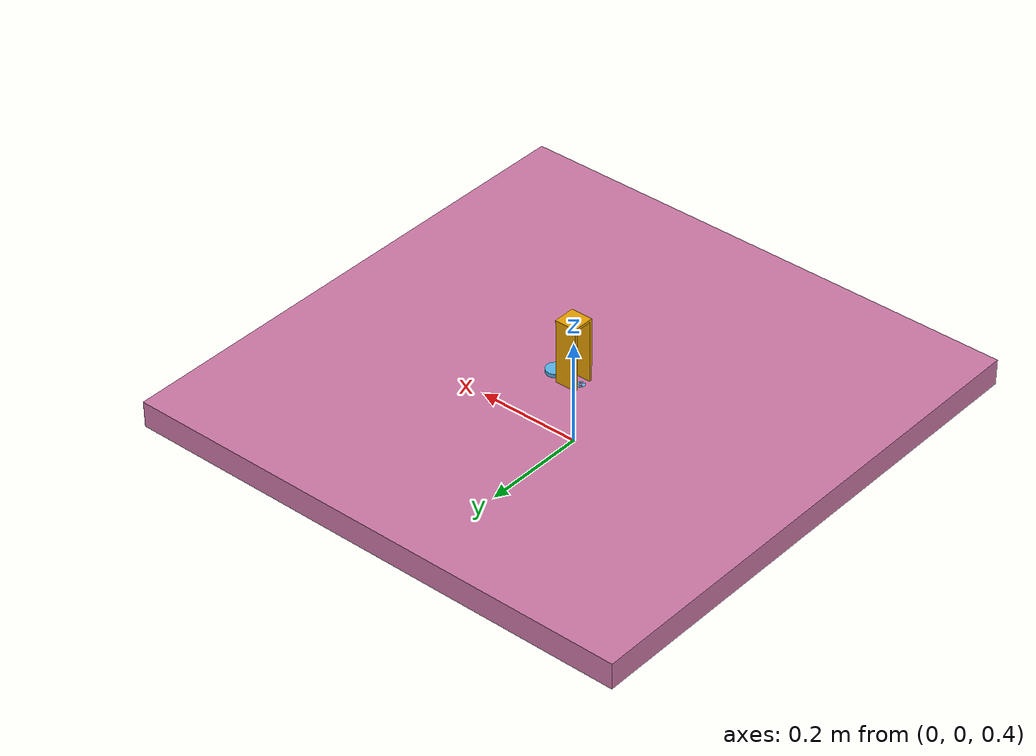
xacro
<?xml version="1.0" ?>
<robot name="myrobot" xmlns:xacro="http://wiki.ros.org/xacro">
  <xacro:include filename="$(find myrobot_support)/urdf/myrobot_macro.xacro"/>
  <xacro:myrobot prefix=""/>
  <link name="world"/>
  <link name="table">
    <visual>
      <geometry>
        <box size="1.0 1.0 0.05"/>
      </geometry>
    </visual>
    <collision>
      <geometry>
        <box size="1.0 1.0 0.05"/>
      </geometry>
    </collision>
  </link>
  <link name="camera_frame"/>

  <joint name="world_to_table" type="fixed">
    <parent link="world"/>
    <child link="table"/>
    <origin xyz="0 0 0.5" rpy="0 0 0"/>
  </joint>

  <joint name="world_to_camera" type="fixed">
    <parent link="world"/>
    <child link="camera_frame"/>
    <origin xyz="-0.25 -0.5 1.25" rpy="0 3.14159 0"/>
  </joint>
  <joint name="table_to_robot" type="fixed">
    <parent link="table"/>
    <child link="base_link"/>
    <origin xyz="0 0 0" rpy="0 0 0"/>
  </joint>
</robot>

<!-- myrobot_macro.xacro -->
<robot xmlns:xacro="http://wiki.ros.org/xacro">
  <xacro:include filename="$(find fanuc_resources)/urdf/common_materials.xacro"/>

  <xacro:macro name="myrobot" params="prefix">
    <!-- links: main serial chain -->
    <link name="${prefix}base_link">
      <visual>
        <origin xyz="0 0 0" rpy="0 0 0"/>
        <geometry>
          <mesh filename="package://myrobot_support/meshes/visual/base.stl"/>
        </geometry>
        <xacro:material_fanuc_gray40 />
      </visual>
      <collision>
        <origin xyz="0 0 0" rpy="0 0 0"/>
        <geometry>
          <mesh filename="package://myrobot_support/meshes/collision/base.stl"/>
        </geometry>
      </collision>
    </link>
    <link name="${prefix}link_1">
      <visual>
        <origin xyz="0 0 0" rpy="0 0 0"/>
        <geometry>
          <mesh filename="package://myrobot_support/meshes/visual/link1.stl"/>
        </geometry>
        <xacro:material_fanuc_yellow />
      </visual>
      <collision>
        <origin xyz="0 0 0" rpy="0 0 0"/>
        <geometry>
          <mesh filename="package://myrobot_support/meshes/collision/link1.stl"/>
        </geometry>
      </collision>
    </link>
    <link name="${prefix}link_2">
      <visual>
        <origin xyz="0 0 0" rpy="0 0 0"/>
        <geometry>
          <mesh filename="package://myrobot_support/meshes/visual/link2.stl"/>
        </geometry>
        <xacro:material_fanuc_white />
      </visual>
      <collision>
        <origin xyz="0 0 0" rpy="0 0 0"/>
        <geometry>
          <mesh filename="package://myrobot_support/meshes/collision/link2.stl"/>
        </geometry>
      </collision>
    </link>
    <link name="${prefix}link_3">
      <visual>
        <origin xyz="0 0 0" rpy="0 0 0"/>
        <geometry>
          <mesh filename="package://myrobot_support/meshes/visual/link3.stl"/>
        </geometry>
        <xacro:material_fanuc_green />
      </visual>
      <collision>
        <origin xyz="0 0 0" rpy="0 0 0"/>
        <geometry>
          <mesh filename="package://myrobot_support/meshes/collision/link3.stl"/>
        </geometry>
      </collision>
    </link>

    <!-- joints: main serial chain -->
    <joint name="${prefix}joint_1" type="prismatic">
      <origin xyz="0 0 0.005" rpy="0 0 0"/>
      <parent link="${prefix}base_link"/>
      <child link="${prefix}link_1"/>
      <axis xyz="0 0 1"/>
      <limit lower="0" upper="0.08" effort="0" velocity="0.004"/>
    </joint>
    <joint name="${prefix}joint_2" type="revolute">
      <origin xyz="0.039503 0 -0.005" rpy="0 0 0"/>
      <parent link="${prefix}link_1"/>
      <child link="${prefix}link_2"/>
      <axis xyz="0 0 1"/>
      <limit lower="-1.57" upper="1.49" effort="0" velocity="1.0472"/>
    </joint>
    <joint name="${prefix}joint_3" type="revolute">
      <origin xyz="0.07 0 0.006" rpy="0 0 0"/>
      <parent link="${prefix}link_2"/>
      <child link="${prefix}link_3"/>
      <axis xyz="0 0 1"/>
      <limit lower="-2.62" upper="2.62" effort="0" velocity="1.0472"/>
    </joint>

    <!-- ROS-Industrial 'base' frame: base_link to World Coordinates transform -->

    <!-- ROS-Industrial 'flange' frame: attachment point for EEF models -->

    <!-- ROS-Industrial 'tool0' frame: all-zeros tool frame -->
    <link name="${prefix}tool0" />
    <joint name="${prefix}link_3-tool0" type="fixed">
      <!--origin xyz="0 0 0" rpy="${pi} ${-pi/2.0} 0" /-->
      <origin xyz="0 0 0" rpy="0 0 0" />
      <parent link="${prefix}link_3" />
      <child link="${prefix}tool0" />
    </joint>
  </xacro:macro>
</robot>
